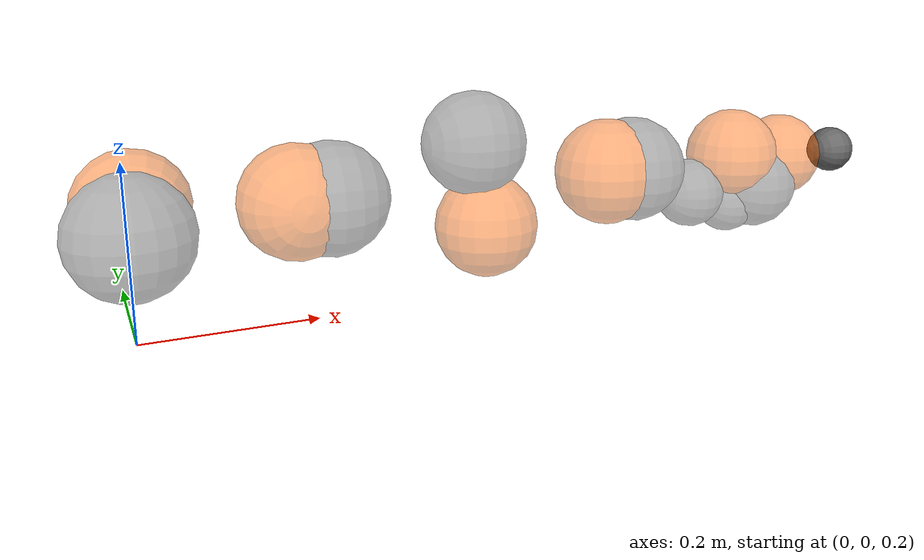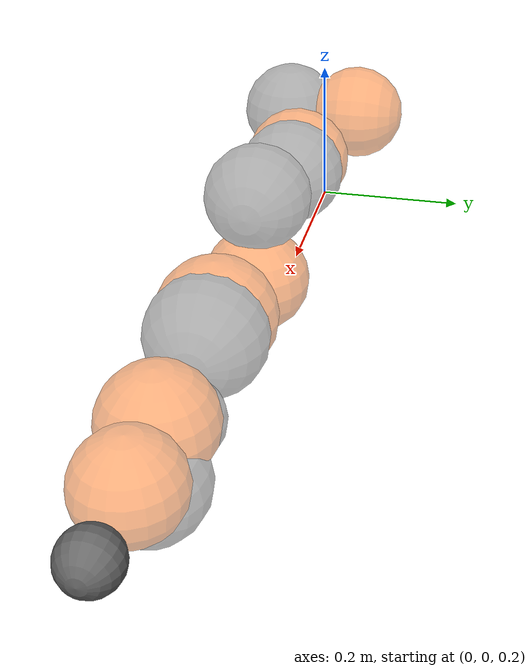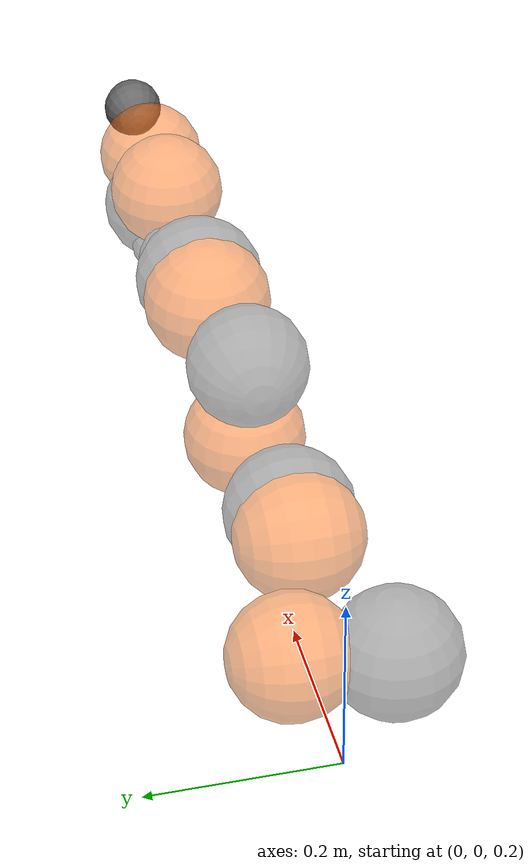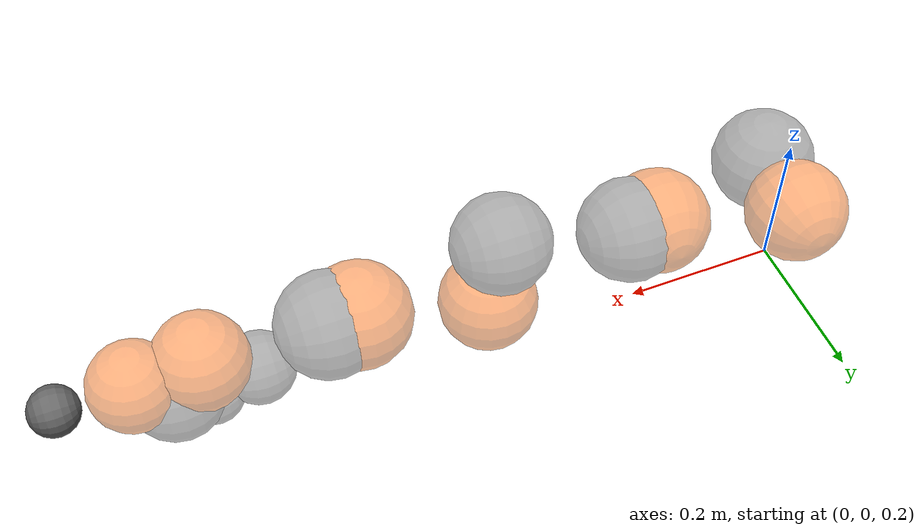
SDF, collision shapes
<?xml version="1.0"?>
<sdf version="1.7">

  <model name="iiwa7">

    <link name="iiwa_link_0">
      <inertial>
        <pose>-0.013 0 0.07 0 0 0</pose>
        <mass>3.863</mass>
        <inertia>
          <ixx>0.0141</ixx>
          <ixy>0</ixy>
          <ixz>0</ixz>
          <iyy>0.0171</iyy>
          <iyz>0</iyz>
          <izz>0.0178</izz>
        </inertia>
      </inertial>
      <visual name="iiwa_link_0_visual">
        <geometry>
          <mesh>
            <scale>1 1 1</scale>
            <uri>package://drake_manipulation_models/iiwa_description/iiwa7/meshes/visual/link_0.stl</uri>
          </mesh>
        </geometry>
        <material>
          <diffuse>0.4 0.4 0.4 1.0</diffuse>
        </material>
      </visual>
      <gravity>1</gravity>
    </link>
    <link name="iiwa_link_1">
      <pose>0 0 0.1575 0 0 0</pose>
      <inertial>
        <pose>0 -0.0347 0.113 0 0 0</pose>
        <mass>2.7025</mass>
        <inertia>
          <ixx>0.0171</ixx>
          <ixy>0</ixy>
          <ixz>0</ixz>
          <iyy>0.0163</iyy>
          <iyz>0</iyz>
          <izz>0.006</izz>
        </inertia>
      </inertial>
      <visual name="iiwa_link_1_visual">
        <geometry>
          <mesh>
            <scale>1 1 1</scale>
            <uri>package://drake_manipulation_models/iiwa_description/iiwa7/meshes/visual/link_1.stl</uri>
          </mesh>
        </geometry>
        <material>
          <diffuse>0.4 0.4 0.4 0.5</diffuse>
        </material>
      </visual>

      <!-- TODO: yongpeng -->
      <collision name='iiwa_link_1_contact'>
        <pose>0 -0.05 0.175 0 -0 0</pose>
        <geometry>
          <sphere>
            <radius>0.067</radius>
          </sphere>
        </geometry>
        <surface>
          <friction>
          <ode>
            <mu>0.5</mu>
            <mu2>0.5</mu2>
          </ode>
          </friction>
        </surface>
      </collision>
      <visual name='iiwa_link_1_contact_visual'>
        <pose>0 -0.05 0.175 0 -0 0</pose>
        <geometry>
          <sphere>
            <radius>0.065</radius>
          </sphere>
        </geometry>
        <material>
          <diffuse>0.8 0.8 0.8 1.0</diffuse>
        </material>
      </visual>
      <!-- TODO: yongpeng -->

      <gravity>1</gravity>
    </link>
    <joint name="iiwa_joint_1" type="revolute">
      <child>iiwa_link_1</child>
      <parent>iiwa_link_0</parent>
      <axis>
        <xyz expressed_in="__model__">0 0 1</xyz>
        <limit>
          <lower>-2.96706</lower>
          <upper>2.96706</upper>
          <effort>300</effort>
          <velocity>10</velocity>
        </limit>
        <dynamics>
          <damping>0.0</damping>
          <friction>0</friction>
          <spring_reference>0</spring_reference>
          <spring_stiffness>0</spring_stiffness>
        </dynamics>
      </axis>
    </joint>
    <link name="iiwa_link_2">
      <pose>0 0 0.3405 0 -1.5708 -1.5708</pose>
      <inertial>
        <pose>0.000 0.0668 0.0344 0 0 0</pose>
        <mass>2.7258</mass>
        <inertia>
          <ixx>0.0170</ixx>
          <ixy>0</ixy>
          <ixz>0</ixz>
          <iyy>0.0162</iyy>
          <iyz>0</iyz>
          <izz>0.0061</izz>
        </inertia>
      </inertial>
      <visual name="iiwa_link_2_visual">
        <geometry>
          <mesh>
            <scale>1 1 1</scale>
            <uri>package://drake_manipulation_models/iiwa_description/iiwa7/meshes/visual/link_2.stl</uri>
          </mesh>
        </geometry>
        <material>
          <diffuse>1.0 0.423529411765 0.0392156862745 0.5</diffuse>
        </material>
      </visual>

      <!-- TODO: yongpeng -->
      <visual name='iiwa_link_2_contact_visual'>
        <pose>0 0.18 0 0 -0 0</pose>
        <geometry>
          <sphere>
            <radius>0.067</radius>
          </sphere>
        </geometry>
        <material>
          <diffuse>0.8 0.8 0.8 1.0</diffuse>
        </material>
      </visual>
      <collision name='iiwa_link_2_contact'>
        <pose>0 0.18 0 0 -0 0</pose>
        <geometry>
          <sphere>
            <radius>0.067</radius>
          </sphere>
        </geometry>
        <surface>
          <friction>
          <ode>
            <mu>0.5</mu>
            <mu2>0.5</mu2>
          </ode>
          </friction>
        </surface>
      </collision>
      <visual name='iiwa_link_2_contact_visual2'>
        <pose>0 0.01 0.05 0 -0 0</pose>
        <geometry>
          <sphere>
            <radius>0.065</radius>
          </sphere>
        </geometry>
        <material>
          <diffuse>0.8 0.8 0.8 1.0</diffuse>
        </material>
      </visual>
      <collision name='iiwa_link_2_contact2'>
        <pose>0 0.01 0.05 0 -0 0</pose>
        <geometry>
          <sphere>
            <radius>0.065</radius>
          </sphere>
        </geometry>
        <surface>
          <friction>
          <ode>
            <mu>0.5</mu>
            <mu2>0.5</mu2>
          </ode>
          </friction>
        </surface>
      </collision>
      <!-- TODO: yongpeng -->

      <gravity>1</gravity>
    </link>
    <joint name="iiwa_joint_2" type="fixed">
      <child>iiwa_link_2</child>
      <parent>iiwa_link_1</parent>
    </joint>
    <link name="iiwa_link_3">
      <pose>0.1840 0 0.3405 1.5708 0 1.5708</pose>
      <inertial>
        <pose>0 0.0296 0.1265 0 0 0</pose>
        <mass>3.175</mass>
        <inertia>
          <ixx>0.025</ixx>
          <ixy>0</ixy>
          <ixz>0</ixz>
          <iyy>0.0238</iyy>
          <iyz>0</iyz>
          <izz>0.0076</izz>
        </inertia>
      </inertial>
      <visual name="iiwa_link_3_visual">
        <geometry>
          <mesh>
            <scale>1 1 1</scale>
            <uri>package://drake_manipulation_models/iiwa_description/iiwa7/meshes/visual/link_3.stl</uri>
          </mesh>
        </geometry>
        <material>
          <diffuse>0.4 0.4 0.4 0.5</diffuse>
        </material>
      </visual>

      <!-- TODO: yongpeng -->
      <visual name='iiwa_link_3_contact_visual'>
        <pose>0 0.05 0.21 0 -0 0</pose>
        <geometry>
          <sphere>
            <radius>0.063</radius>
          </sphere>
        </geometry>
        <material>
          <diffuse>0.8 0.8 0.8 1.0</diffuse>
        </material>
      </visual>
      <collision name='iiwa_link_3_contact'>
        <pose>0 0.05 0.21 0 -0 0</pose>
        <geometry>
          <sphere>
            <radius>0.063</radius>
          </sphere>
        </geometry>
        <surface>
          <friction>
          <ode>
            <mu>0.5</mu>
            <mu2>0.5</mu2>
          </ode>
          </friction>
        </surface>
      </collision>
      <visual name='iiwa_link_3_contact_visual2'>
        <pose>0 0.0 0.035 0 -0 0</pose>
        <geometry>
          <sphere>
            <radius>0.067</radius>
          </sphere>
        </geometry>
        <material>
          <diffuse>0.8 0.8 0.8 1.0</diffuse>
        </material>
      </visual>
      <collision name='iiwa_link_3_contact2'>
        <pose>0 0.0 0.035 0 -0 0</pose>
        <geometry>
          <sphere>
            <radius>0.067</radius>
          </sphere>
        </geometry>
        <surface>
          <friction>
          <ode>
            <mu>0.5</mu>
            <mu2>0.5</mu2>
          </ode>
          </friction>
        </surface>
      </collision>
      <!-- TODO: yongpeng -->

      <gravity>1</gravity>
    </link>
    <joint name="iiwa_joint_3" type="fixed">
      <child>iiwa_link_3</child>
      <parent>iiwa_link_2</parent>
    </joint>
    <link name="iiwa_link_4">
      <pose>0.3995 0 0.3405 -3.1416 0 1.5708</pose>
      <inertial>
        <pose>0 0.067 0.034 0 0 0</pose>
        <mass>2.73</mass>
        <inertia>
          <ixx>0.017</ixx>
          <ixy>0</ixy>
          <ixz>0</ixz>
          <iyy>0.0162</iyy>
          <iyz>0</iyz>
          <izz>0.0061</izz>
        </inertia>
      </inertial>
      <visual name="iiwa_link_4_visual">
        <geometry>
          <mesh>
            <scale>1 1 1</scale>
            <uri>package://drake_manipulation_models/iiwa_description/iiwa7/meshes/visual/link_4.stl</uri>
          </mesh>
        </geometry>
        <material>
          <diffuse>1.0 0.42 0.04 0.5</diffuse>
        </material>
      </visual>

      <!-- TODO: yongpeng -->
      <visual name='iiwa_link_4_contact_visual'>
        <pose>0 0.01 0.052 0 -0 0</pose>
        <geometry>
          <sphere>
            <radius>0.063</radius>
          </sphere>
        </geometry>
        <material>
          <diffuse>0.8 0.8 0.8 1.0</diffuse>
        </material>
      </visual>
      <collision name='iiwa_link_4_contact'>
        <pose>0 0.01 0.052 0 -0 0</pose>
        <geometry>
          <sphere>
            <radius>0.063</radius>
          </sphere>
        </geometry>
        <surface>
          <friction>
          <ode>
            <mu>0.5</mu>
            <mu2>0.5</mu2>
          </ode>
          </friction>
        </surface>
      </collision>
      <visual name='iiwa_link_4_contact_visual2'>
        <pose>0 0.177 0.0 0 -0 0</pose>
        <geometry>
          <sphere>
            <radius>0.067</radius>
          </sphere>
        </geometry>
        <material>
          <diffuse>0.8 0.8 0.8 1.0</diffuse>
        </material>
      </visual>
      <collision name='iiwa_link_4_contact2'>
        <pose>0 0.177 0.0 0 -0 0</pose>
        <geometry>
          <sphere>
            <radius>0.067</radius>
          </sphere>
        </geometry>
        <surface>
          <friction>
          <ode>
            <mu>0.5</mu>
            <mu2>0.5</mu2>
          </ode>
          </friction>
        </surface>
      </collision>
      <!-- TODO: yongpeng -->

      <gravity>1</gravity>
    </link>
    <joint name="iiwa_joint_4" type="revolute">
      <child>iiwa_link_4</child>
      <parent>iiwa_link_3</parent>
      <axis>
        <xyz expressed_in="__model__">0 0 -1</xyz>
        <limit>
          <lower>-2.0944</lower>
          <upper>2.0944</upper>
          <effort>300</effort>
          <velocity>10</velocity>
        </limit>
        <dynamics>
          <damping>0.0</damping>
          <friction>0</friction>
          <spring_reference>0</spring_reference>
          <spring_stiffness>0</spring_stiffness>
        </dynamics>
      </axis>
    </joint>
    <link name="iiwa_link_5">
      <pose>0.5835 0 0.3405 -1.5708 0 -1.5708</pose>
      <inertial>
        <pose>0.0001 0.021 0.076 0 0 0</pose>
        <mass>1.69</mass>
        <inertia>
          <ixx>0.01</ixx>
          <ixy>0</ixy>
          <ixz>0</ixz>
          <iyy>0.0087</iyy>
          <iyz>0</iyz>
          <izz>0.00449</izz>
        </inertia>
      </inertial>
      <visual name="iiwa_link_5_visual">
        <geometry>
          <mesh>
            <scale>1 1 1</scale>
            <uri>package://drake_manipulation_models/iiwa_description/iiwa7/meshes/visual/link_5.stl</uri>
          </mesh>
        </geometry>
        <material>
          <diffuse>0.4 0.4 0.4 0.5</diffuse>
        </material>
      </visual>

      <!-- TODO: yongpeng -->
      <visual name='iiwa_link_5_contact_visual'>
        <pose>0 0 0.03 0 -0 0</pose>
        <geometry>
          <sphere>
            <radius>0.067</radius>
          </sphere>
        </geometry>
        <material>
          <diffuse>0.8 0.8 0.8 1.0</diffuse>
        </material>
      </visual>

      <collision name='iiwa_link_5_contact'>
        <pose>0 0 0.03 0 -0 0</pose>
        <geometry>
          <sphere>
            <radius>0.067</radius>
          </sphere>
        </geometry>
        <surface>
          <friction>
          <ode>
            <mu>0.5</mu>
            <mu2>0.5</mu2>
          </ode>
          </friction>
        </surface>
      </collision>

      <visual name='iiwa_link_5_contact_visual2'>
        <pose>0 0.035 0.22 0 -0 0</pose>
        <geometry>
          <sphere>
            <radius>0.06</radius>
          </sphere>
        </geometry>
        <material>
          <diffuse>0.8 0.8 0.8 1.0</diffuse>
        </material>
      </visual>

      <collision name='iiwa_link_5_contact2'>
        <pose>0 0.035 0.22 0 -0 0</pose>
        <geometry>
          <sphere>
            <radius>0.06</radius>
          </sphere>
        </geometry>
        <surface>
          <friction>
          <ode>
            <mu>0.5</mu>
            <mu2>0.5</mu2>
          </ode>
          </friction>
        </surface>
      </collision>

      <visual name='iiwa_link_5_contact_visual3'>
        <pose>0 0.058 0.18 0 -0 0</pose>
        <geometry>
          <sphere>
            <radius>0.04</radius>
          </sphere>
        </geometry>
        <material>
          <diffuse>0.8 0.8 0.8 1.0</diffuse>
        </material>
      </visual>

      <collision name='iiwa_link_5_contact3'>
        <pose>0 0.058 0.18 0 -0 0</pose>
        <geometry>
          <sphere>
            <radius>0.04</radius>
          </sphere>
        </geometry>
        <surface>
          <friction>
          <ode>
            <mu>0.5</mu>
            <mu2>0.5</mu2>
          </ode>
          </friction>
        </surface>
      </collision>

      <visual name='iiwa_link_5_contact_visual4'>
        <pose>0 0.04 0.12 0 -0 0</pose>
        <geometry>
          <sphere>
            <radius>0.045</radius>
          </sphere>
        </geometry>
        <material>
          <diffuse>0.8 0.8 0.8 1.0</diffuse>
        </material>
      </visual>

      <collision name='iiwa_link_5_contact4'>
        <pose>0 0.04 0.12 0 -0 0</pose>
        <geometry>
          <sphere>
            <radius>0.045</radius>
          </sphere>
        </geometry>
        <surface>
          <friction>
          <ode>
            <mu>0.5</mu>
            <mu2>0.5</mu2>
          </ode>
          </friction>
        </surface>
      </collision>
      <!-- TODO: yongpeng -->

      <gravity>1</gravity>
    </link>
    <joint name="iiwa_joint_5" type="fixed">
      <child>iiwa_link_5</child>
      <parent>iiwa_link_4</parent>
    </joint>
    <link name="iiwa_link_6">
      <pose>0.7990 0 0.3405 0 0 -1.5708</pose>
      <inertial>
        <pose>0 0.0026 0.0005 0 0 0</pose>
        <mass>1.8</mass>
        <inertia>
          <ixx>0.0051</ixx>
          <ixy>0</ixy>
          <ixz>0</ixz>
          <iyy>0.0049</iyy>
          <iyz>0</iyz>
          <izz>0.0035</izz>
        </inertia>
      </inertial>
      <visual name="iiwa_link_6_visual">
        <pose>0 0 -0.060700 0 0 0</pose>
        <geometry>
          <mesh>
            <scale>1 1 1</scale>
            <uri>package://drake_manipulation_models/iiwa_description/iiwa7/meshes/visual/link_6.stl</uri>
          </mesh>
        </geometry>
        <material>
          <diffuse>1.0 0.42 0.04 0.5</diffuse>
        </material>
      </visual>

      <!-- TODO: yongpeng -->
      <visual name='iiwa_link_6_contact_visual'>
        <pose>0 -0.03 0.007 0 -0 0</pose>
        <geometry>
          <sphere>
            <radius>0.06</radius>
          </sphere>
        </geometry>
        <material>
          <diffuse>0.8 0.8 0.8 1.0</diffuse>
        </material>
      </visual>

      <collision name='iiwa_link_6_contact'>
        <pose>0 -0.03 0.007 0 -0 0</pose>
        <geometry>
          <sphere>
            <radius>0.06</radius>
          </sphere>
        </geometry>
        <surface>
          <friction>
          <ode>
            <mu>0.5</mu>
            <mu2>0.5</mu2>
          </ode>
          </friction>
        </surface>
      </collision>

      <visual name='iiwa_link_6_contact_visual2'>
        <pose>0 0.05 0. 0 -0 0</pose>
        <geometry>
          <sphere>
            <radius>0.055</radius>
          </sphere>
        </geometry>
        <material>
          <diffuse>0.8 0.8 0.8 1.0</diffuse>
        </material>
      </visual>

      <collision name='iiwa_link_6_contact2'>
        <pose>0 0.05 0. 0 -0 0</pose>
        <geometry>
          <sphere>
            <radius>0.055</radius>
          </sphere>
        </geometry>
        <surface>
          <friction>
          <ode>
            <mu>0.5</mu>
            <mu2>0.5</mu2>
          </ode>
          </friction>
        </surface>
      </collision>
      <!-- TODO: yongpeng -->

      <gravity>1</gravity>
    </link>
    <joint name="iiwa_joint_6" type="revolute">
      <child>iiwa_link_6</child>
      <parent>iiwa_link_5</parent>
      <axis>
        <xyz expressed_in="__model__">0 0 1</xyz>
        <limit>
          <lower>-2.0944</lower>
          <upper>2.0944</upper>
          <effort>300</effort>
          <velocity>10</velocity>
        </limit>
        <dynamics>
          <damping>0.0</damping>
          <friction>0</friction>
          <spring_reference>0</spring_reference>
          <spring_stiffness>0</spring_stiffness>
        </dynamics>
      </axis>
    </joint>
    <link name="iiwa_link_7">
      <pose>0.8795 0 0.3405 1.5708 0 1.5708</pose>
      <inertial>
        <pose>0 0 0.0294 0 0 0</pose>
        <mass>.4</mass>
        <inertia>
          <ixx>0.0004</ixx>
          <ixy>0</ixy>
          <ixz>0</ixz>
          <iyy>0.0004</iyy>
          <iyz>0</iyz>
          <izz>0.0005</izz>
        </inertia>
      </inertial>
      <visual name="iiwa_link_7_visual">
        <geometry>
          <mesh>
            <scale>1 1 1</scale>
            <uri>package://drake_manipulation_models/iiwa_description/iiwa7/meshes/visual/link_7.stl</uri>
          </mesh>
        </geometry>
        <material>
          <diffuse>0.4 0.4 0.4 1.0</diffuse>
        </material>
      </visual>

      <visual name='iiwa_link_7_contact_visual'>
        <pose>0 -0.0 0.06 0 -0 0</pose>
        <geometry>
          <sphere>
            <radius>0.031</radius>
          </sphere>
        </geometry>
        <material>
          <diffuse>0.8 0.8 0.8 1.0</diffuse>
        </material>
      </visual>

      <collision name='iiwa_link_7_contact'>
        <pose>0 -0.0 0.06 0 -0 0</pose>
        <geometry>
          <sphere>
            <radius>0.031</radius>
          </sphere>
        </geometry>
        <surface>
          <friction>
          <ode>
            <mu>0.5</mu>
            <mu2>0.5</mu2>
          </ode>
          </friction>
        </surface>
      </collision>
      <gravity>1</gravity>
    </link>
    <joint name="iiwa_joint_7" type="fixed">
      <child>iiwa_link_7</child>
      <parent>iiwa_link_6</parent>
    </joint>
    <static>0</static>
  </model>
</sdf>
